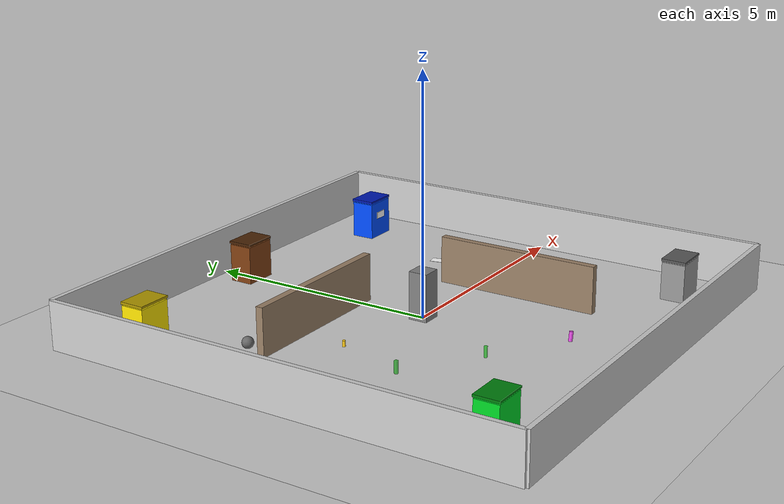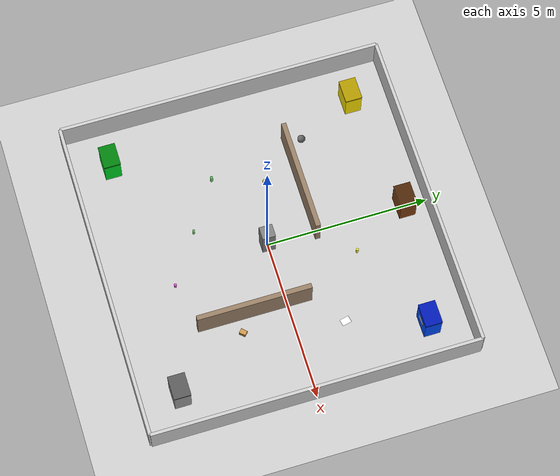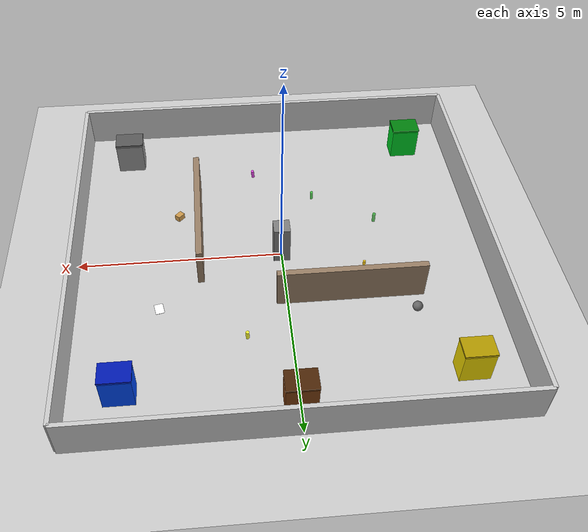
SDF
<?xml version="1.0" ?>
<sdf version="1.6">
  <world name="recycling_world">

    <!-- ==================== LLUM I FÍSICA ==================== -->
    <include>
      <uri>model://sun</uri>
    </include>
    <include>
      <uri>model://ground_plane</uri>
    </include>

    <physics type="ode">
      <real_time_update_rate>1000.0</real_time_update_rate>
      <max_step_size>0.001</max_step_size>
      <real_time_factor>1</real_time_factor>
    </physics>

    <!-- ==================== PARETS EXTERIORS (10x10 m) ==================== -->
    <!-- Paret Sud -->
    <model name="wall_south">
      <static>true</static>
      <pose>0 -5 0.5 0 0 0</pose>
      <link name="link">
        <collision name="collision">
          <geometry><box><size>10 0.1 1</size></box></geometry>
        </collision>
        <visual name="visual">
          <geometry><box><size>10 0.1 1</size></box></geometry>
          <material><ambient>0.8 0.8 0.8 1</ambient></material>
        </visual>
      </link>
    </model>

    <!-- Paret Nord -->
    <model name="wall_north">
      <static>true</static>
      <pose>0 5 0.5 0 0 0</pose>
      <link name="link">
        <collision name="collision">
          <geometry><box><size>10 0.1 1</size></box></geometry>
        </collision>
        <visual name="visual">
          <geometry><box><size>10 0.1 1</size></box></geometry>
          <material><ambient>0.8 0.8 0.8 1</ambient></material>
        </visual>
      </link>
    </model>

    <!-- Paret Oest -->
    <model name="wall_west">
      <static>true</static>
      <pose>-5 0 0.5 0 0 1.5708</pose>
      <link name="link">
        <collision name="collision">
          <geometry><box><size>10 0.1 1</size></box></geometry>
        </collision>
        <visual name="visual">
          <geometry><box><size>10 0.1 1</size></box></geometry>
          <material><ambient>0.8 0.8 0.8 1</ambient></material>
        </visual>
      </link>
    </model>

    <!-- Paret Est -->
    <model name="wall_east">
      <static>true</static>
      <pose>5 0 0.5 0 0 1.5708</pose>
      <link name="link">
        <collision name="collision">
          <geometry><box><size>10 0.1 1</size></box></geometry>
        </collision>
        <visual name="visual">
          <geometry><box><size>10 0.1 1</size></box></geometry>
          <material><ambient>0.8 0.8 0.8 1</ambient></material>
        </visual>
      </link>
    </model>

    <!-- ==================== PARETS INTERIORS ==================== -->
    <!-- Paret interior 1 (horitzontal, centre-esquerra) -->
    <model name="wall_inner_1">
      <static>true</static>
      <pose>-1.5 1.5 0.5 0 0 0</pose>
      <link name="link">
        <collision name="collision">
          <geometry><box><size>3.5 0.15 1</size></box></geometry>
        </collision>
        <visual name="visual">
          <geometry><box><size>3.5 0.15 1</size></box></geometry>
          <material><ambient>0.6 0.5 0.4 1</ambient></material>
        </visual>
      </link>
    </model>

    <!-- Paret interior 2 (vertical, centre-dreta) -->
    <model name="wall_inner_2">
      <static>true</static>
      <pose>2 -1 0.5 0 0 1.5708</pose>
      <link name="link">
        <collision name="collision">
          <geometry><box><size>3.5 0.15 1</size></box></geometry>
        </collision>
        <visual name="visual">
          <geometry><box><size>3.5 0.15 1</size></box></geometry>
          <material><ambient>0.6 0.5 0.4 1</ambient></material>
        </visual>
      </link>
    </model>

    <!-- Pilar central -->
    <model name="pillar_center">
      <static>true</static>
      <pose>0 0 0.5 0 0 0</pose>
      <link name="link">
        <collision name="collision">
          <geometry><box><size>0.4 0.4 1</size></box></geometry>
        </collision>
        <visual name="visual">
          <geometry><box><size>0.4 0.4 1</size></box></geometry>
          <material><ambient>0.5 0.5 0.5 1</ambient></material>
        </visual>
      </link>
    </model>

    <!-- ==================== CONTAINERS DE RECICLATGE ==================== -->

    <!-- Container BLAU (paper/cartró) - Cantó NE -->
    <model name="container_blue">
      <static>true</static>
      <pose>3.8 3.8 0.4 0 0 0</pose>
      <link name="link">
        <collision name="collision">
          <geometry><box><size>0.7 0.5 0.8</size></box></geometry>
        </collision>
        <visual name="visual">
          <geometry><box><size>0.7 0.5 0.8</size></box></geometry>
          <material>
            <ambient>0.0 0.2 0.9 1</ambient>
            <diffuse>0.0 0.3 1.0 1</diffuse>
            <specular>0.1 0.1 0.5 1</specular>
          </material>
        </visual>
        <!-- Tapa del container blau -->
        <visual name="visual_lid">
          <pose>0 0 0.45 0 0 0</pose>
          <geometry><box><size>0.72 0.52 0.05</size></box></geometry>
          <material><ambient>0.0 0.1 0.7 1</ambient></material>
        </visual>
        <!-- Etiqueta PAPER -->
        <visual name="label_blue">
          <pose>0 -0.26 0.1 0 0 0</pose>
          <geometry><box><size>0.3 0.01 0.15</size></box></geometry>
          <material><ambient>1 1 1 1</ambient></material>
        </visual>
      </link>
    </model>

    <!-- Container GROC (envasos) - Cantó NW -->
    <model name="container_yellow">
      <static>true</static>
      <pose>-3.8 3.8 0.4 0 0 0</pose>
      <link name="link">
        <collision name="collision">
          <geometry><box><size>0.7 0.5 0.8</size></box></geometry>
        </collision>
        <visual name="visual">
          <geometry><box><size>0.7 0.5 0.8</size></box></geometry>
          <material>
            <ambient>0.9 0.8 0.0 1</ambient>
            <diffuse>1.0 0.9 0.0 1</diffuse>
            <specular>0.3 0.3 0.1 1</specular>
          </material>
        </visual>
        <visual name="visual_lid">
          <pose>0 0 0.45 0 0 0</pose>
          <geometry><box><size>0.72 0.52 0.05</size></box></geometry>
          <material><ambient>0.7 0.6 0.0 1</ambient></material>
        </visual>
      </link>
    </model>

    <!-- Container VERD (vidre) - Cantó SW -->
    <model name="container_green">
      <static>true</static>
      <pose>-3.8 -3.8 0.4 0 0 0</pose>
      <link name="link">
        <collision name="collision">
          <geometry><box><size>0.7 0.5 0.8</size></box></geometry>
        </collision>
        <visual name="visual">
          <geometry><box><size>0.7 0.5 0.8</size></box></geometry>
          <material>
            <ambient>0.0 0.7 0.1 1</ambient>
            <diffuse>0.0 0.85 0.15 1</diffuse>
            <specular>0.1 0.4 0.1 1</specular>
          </material>
        </visual>
        <visual name="visual_lid">
          <pose>0 0 0.45 0 0 0</pose>
          <geometry><box><size>0.72 0.52 0.05</size></box></geometry>
          <material><ambient>0.0 0.5 0.05 1</ambient></material>
        </visual>
      </link>
    </model>

    <!-- Container GRIS (resta) - Cantó SE -->
    <model name="container_gray">
      <static>true</static>
      <pose>3.8 -3.8 0.4 0 0 0</pose>
      <link name="link">
        <collision name="collision">
          <geometry><box><size>0.7 0.5 0.8</size></box></geometry>
        </collision>
        <visual name="visual">
          <geometry><box><size>0.7 0.5 0.8</size></box></geometry>
          <material>
            <ambient>0.5 0.5 0.5 1</ambient>
            <diffuse>0.6 0.6 0.6 1</diffuse>
            <specular>0.2 0.2 0.2 1</specular>
          </material>
        </visual>
        <visual name="visual_lid">
          <pose>0 0 0.45 0 0 0</pose>
          <geometry><box><size>0.72 0.52 0.05</size></box></geometry>
          <material><ambient>0.35 0.35 0.35 1</ambient></material>
        </visual>
      </link>
    </model>

    <!-- Container MARRÓ (orgànic) - Paret Nord, centre -->
    <model name="container_brown">
      <static>true</static>
      <pose>0 4.3 0.4 0 0 0</pose>
      <link name="link">
        <collision name="collision">
          <geometry><box><size>0.7 0.5 0.8</size></box></geometry>
        </collision>
        <visual name="visual">
          <geometry><box><size>0.7 0.5 0.8</size></box></geometry>
          <material>
            <ambient>0.4 0.2 0.05 1</ambient>
            <diffuse>0.5 0.25 0.07 1</diffuse>
            <specular>0.1 0.05 0.01 1</specular>
          </material>
        </visual>
        <visual name="visual_lid">
          <pose>0 0 0.45 0 0 0</pose>
          <geometry><box><size>0.72 0.52 0.05</size></box></geometry>
          <material><ambient>0.3 0.15 0.03 1</ambient></material>
        </visual>
      </link>
    </model>

    <!-- ==================== BROSSA DISPERSA ==================== -->
    <!-- Ampolla de plàstic (groga - envàs) -->
    <model name="trash_bottle_1">
      <static>false</static>
      <pose>1.0 2.5 0.1 0 0 0.5</pose>
      <link name="link">
        <inertial><mass>0.05</mass></inertial>
        <collision name="collision">
          <geometry><cylinder><radius>0.04</radius><length>0.2</length></cylinder></geometry>
        </collision>
        <visual name="visual">
          <geometry><cylinder><radius>0.04</radius><length>0.2</length></cylinder></geometry>
          <material><ambient>1.0 0.9 0.1 1</ambient><diffuse>1.0 1.0 0.2 1</diffuse></material>
        </visual>
      </link>
    </model>

    <!-- Llauna (groga - envàs) -->
    <model name="trash_can_1">
      <static>false</static>
      <pose>-2.0 0.5 0.06 0 0 0</pose>
      <link name="link">
        <inertial><mass>0.05</mass></inertial>
        <collision name="collision">
          <geometry><cylinder><radius>0.033</radius><length>0.12</length></cylinder></geometry>
        </collision>
        <visual name="visual">
          <geometry><cylinder><radius>0.033</radius><length>0.12</length></cylinder></geometry>
          <material><ambient>0.9 0.7 0.0 1</ambient><diffuse>1.0 0.8 0.1 1</diffuse></material>
        </visual>
      </link>
    </model>

    <!-- Ampolla de vidre (verda) -->
    <model name="trash_glass_1">
      <static>false</static>
      <pose>-1.0 -2.0 0.1 0 0 0.3</pose>
      <link name="link">
        <inertial><mass>0.2</mass></inertial>
        <collision name="collision">
          <geometry><cylinder><radius>0.035</radius><length>0.22</length></cylinder></geometry>
        </collision>
        <visual name="visual">
          <geometry><cylinder><radius>0.035</radius><length>0.22</length></cylinder></geometry>
          <material><ambient>0.1 0.6 0.1 0.8</ambient><diffuse>0.2 0.8 0.2 0.8</diffuse></material>
        </visual>
      </link>
    </model>

    <!-- Caixa de cartró (blava - paper) -->
    <model name="trash_cardboard_1">
      <static>false</static>
      <pose>2.5 -1.5 0.08 0 0 0.8</pose>
      <link name="link">
        <inertial><mass>0.1</mass></inertial>
        <collision name="collision">
          <geometry><box><size>0.2 0.15 0.15</size></box></geometry>
        </collision>
        <visual name="visual">
          <geometry><box><size>0.2 0.15 0.15</size></box></geometry>
          <material><ambient>0.7 0.5 0.2 1</ambient><diffuse>0.8 0.6 0.3 1</diffuse></material>
        </visual>
      </link>
    </model>

    <!-- Bossa de brossa (grisa - resta) -->
    <model name="trash_bag_1">
      <static>false</static>
      <pose>-3.0 2.0 0.1 0 0 0</pose>
      <link name="link">
        <inertial><mass>0.3</mass></inertial>
        <collision name="collision">
          <geometry><sphere><radius>0.12</radius></sphere></geometry>
        </collision>
        <visual name="visual">
          <geometry><sphere><radius>0.12</radius></sphere></geometry>
          <material><ambient>0.3 0.3 0.3 1</ambient><diffuse>0.4 0.4 0.4 1</diffuse></material>
        </visual>
      </link>
    </model>

    <!-- Ampolla de plàstic 2 (groga) -->
    <model name="trash_bottle_2">
      <static>false</static>
      <pose>0.5 -3.0 0.1 0.1 0 1.2</pose>
      <link name="link">
        <inertial><mass>0.05</mass></inertial>
        <collision name="collision">
          <geometry><cylinder><radius>0.04</radius><length>0.2</length></cylinder></geometry>
        </collision>
        <visual name="visual">
          <geometry><cylinder><radius>0.04</radius><length>0.2</length></cylinder></geometry>
          <material><ambient>0.8 0.2 0.8 1</ambient><diffuse>0.9 0.3 0.9 1</diffuse></material>
        </visual>
      </link>
    </model>

    <!-- Paper (blau - paper) -->
    <model name="trash_paper_1">
      <static>false</static>
      <pose>3.0 1.5 0.01 0 0 0.2</pose>
      <link name="link">
        <inertial><mass>0.02</mass></inertial>
        <collision name="collision">
          <geometry><box><size>0.21 0.29 0.005</size></box></geometry>
        </collision>
        <visual name="visual">
          <geometry><box><size>0.21 0.29 0.005</size></box></geometry>
          <material><ambient>0.9 0.9 1.0 1</ambient><diffuse>1.0 1.0 1.0 1</diffuse></material>
        </visual>
      </link>
    </model>

    <!-- Ampolla de vidre 2 (verda) -->
    <model name="trash_glass_2">
      <static>false</static>
      <pose>-2.5 -1.0 0.12 0 0 0</pose>
      <link name="link">
        <inertial><mass>0.2</mass></inertial>
        <collision name="collision">
          <geometry><cylinder><radius>0.04</radius><length>0.25</length></cylinder></geometry>
        </collision>
        <visual name="visual">
          <geometry><cylinder><radius>0.04</radius><length>0.25</length></cylinder></geometry>
          <material><ambient>0.0 0.5 0.0 0.7</ambient><diffuse>0.1 0.7 0.1 0.7</diffuse></material>
        </visual>
      </link>
    </model>

  </world>
</sdf>
